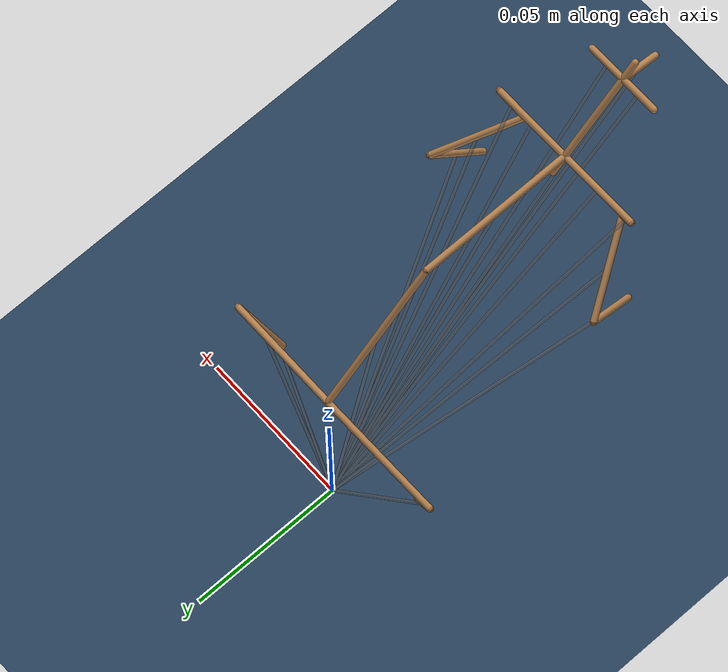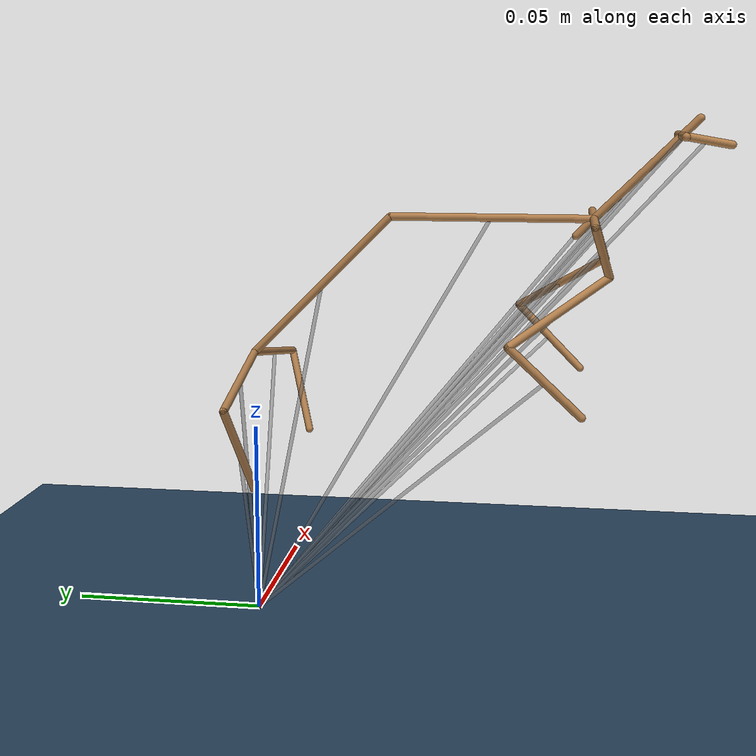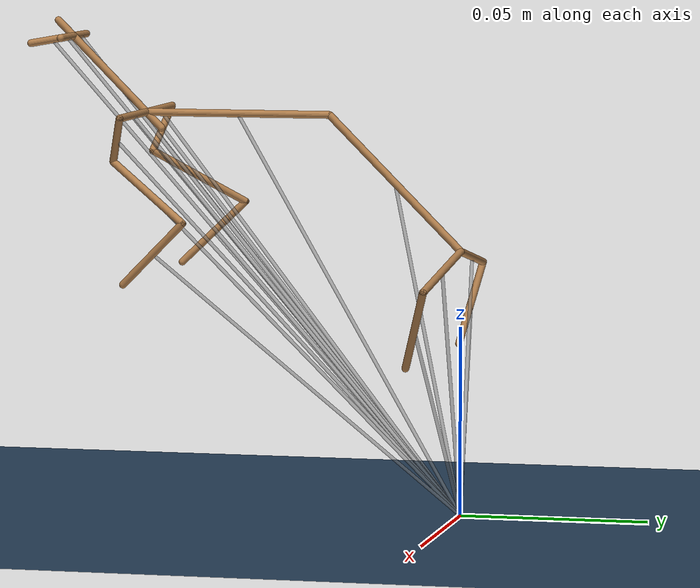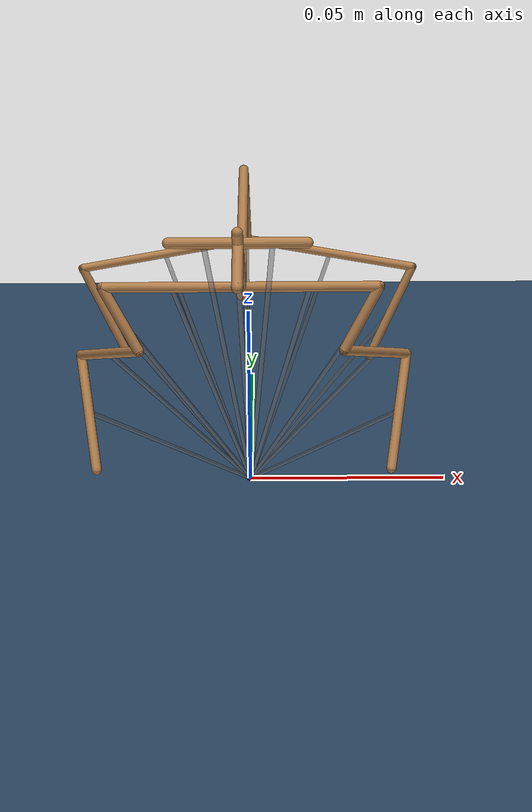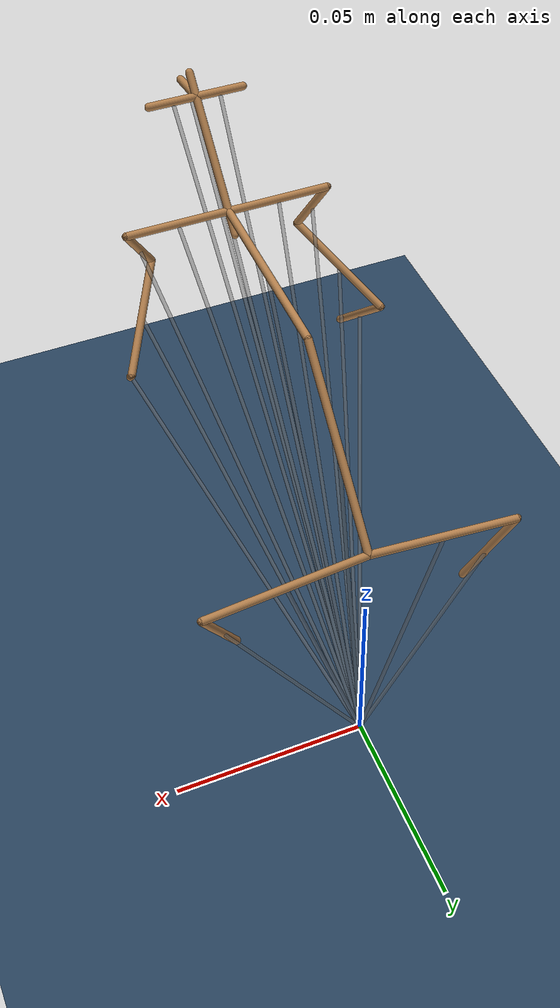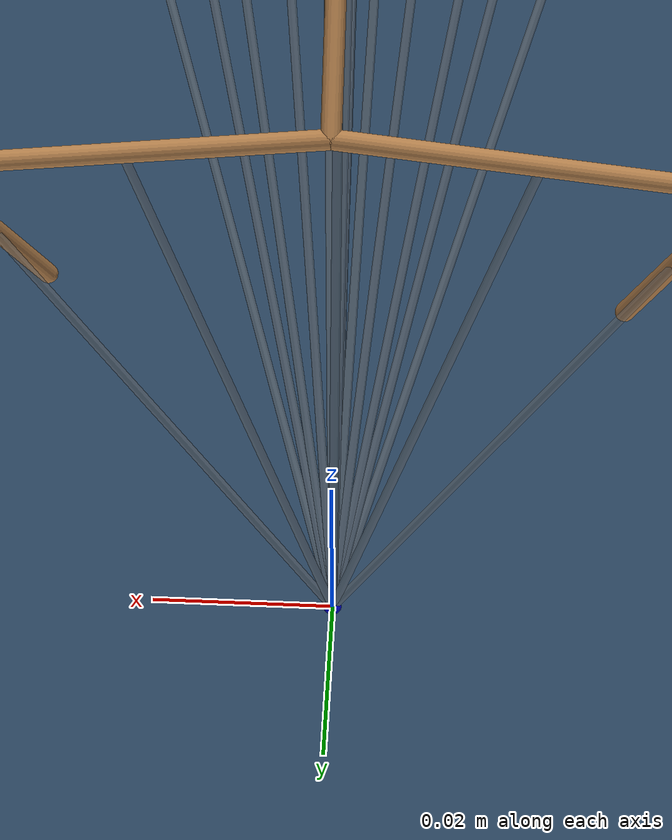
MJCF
<mujoco model="simple_rodent">
  <include file="./common/skybox.xml"/>
  <include file="./common/visual.xml"/>
  <include file="./common/materials.xml"/>

  <compiler angle="degree"/>
  <statistic extent="0.25" center="0 0 0" meanmass="1" meaninertia="1"/>

  <visual>
    <global offheight='1000' offwidth='1000'/>
  </visual>

  <option>
    <flag constraint="enable"/>
  </option>

  <default class="main">
    <joint type="hinge" limited="true" solimplimit="0 0.99 0.01" stiffness="0.1" armature=".1e-3" damping=".01" range="-180 180"/>
    <geom size="0.03 .01 0" conaffinity="1" condim="3" friction="0.7 0.005 0.0001" solref="0.015 1" solimp="0.99 0.99 0.003"/>
    <general ctrllimited="true" ctrlrange="-1 1"/>
    <default class="rodent">
      <geom type="capsule" material="self" group="2" size=".001 .001"/>
    </default>
    <default class="mocap">
      <tendon rgba="0.5 0.5 0.5 0.5" width="0.0005" limited="false" solimplimit="1 5 0.005 0.1 1" solreflimit="0.02 1" springlength="0.00001" stiffness="100" range="0 0.05" frictionloss="10000" damping="1"/>
    </default>
  </default>

  <tendon>
		<spatial name="HeadFT" class="mocap">
      <site site="HeadF"/> <site site="Skull1"/>
    </spatial>
    <spatial name="HeadLT" class="mocap">
      <site site="HeadL"/> <site site="Skull2"/>
    </spatial>
    <spatial name="HeadBT" class="mocap">
      <site site="HeadB"/> <site site="Skull3"/>
    </spatial>
    <spatial name="SpineFT" class="mocap">
      <site site="SpineF"/> <site site="FSpine"/>
    </spatial>
    <spatial name="SpineMT" class="mocap">
      <site site="SpineM"/> <site site="MSpine"/>
    </spatial>
    <spatial name="SpineLT" class="mocap">
      <site site="SpineL"/> <site site="SpineR"/>
    </spatial>
    <spatial name="HipLT" class="mocap">
      <site site="HipL"/> <site site="LFemur"/>
    </spatial>
    <spatial name="HipRT" class="mocap">
      <site site="HipR"/> <site site="RFemur"/>
    </spatial>
    <spatial name="ElbowLT" class="mocap">
      <site site="ElbowL"/> <site site="LHumerus"/>
    </spatial>
    <spatial name="ArmLT" class="mocap">
      <site site="ArmL"/> <site site="LArm"/>
    </spatial>
    <spatial name="ShoulderLT" class="mocap">
      <site site="ShoulderL"/> <site site="LScap"/>
    </spatial>
    <spatial name="ShoulderL2T" class="mocap">
      <site site="ShoulderL"/> <site site="LScap_2"/>
    </spatial>
    <spatial name="ShoulderRT" class="mocap">
      <site site="ShoulderR"/> <site site="RScap"/>
    </spatial>
    <spatial name="ShoulderR2T" class="mocap">
      <site site="ShoulderR"/> <site site="RScap_2"/>
    </spatial>
    <spatial name="ElbowRT" class="mocap">
      <site site="ElbowR"/> <site site="RHumerus"/>
    </spatial>
    <spatial name="ArmRT" class="mocap">
      <site site="ArmR"/> <site site="RArm"/>
    </spatial>
    <spatial name="KneeRT" class="mocap">
      <site site="KneeR"/> <site site="RFemur"/>
    </spatial>
    <spatial name="KneeLT" class="mocap">
      <site site="KneeL"/> <site site="LFemur"/>
    </spatial>
    <spatial name="ShinLT" class="mocap">
      <site site="ShinL"/> <site site="LShin"/>
    </spatial>
    <spatial name="ShinRT" class="mocap">
      <site site="ShinR"/> <site site="RShin"/>
    </spatial>
	</tendon>

  <worldbody>
    <light name="tracking_light" pos="0 0 7" dir="0 0 -1" mode="trackcom"/>
    <camera name="back" pos="0 3 1.4" xyaxes="-1 0 0 0 -1 2" mode="trackcom"/>
    <camera name="side" pos="-3 0 1.4" xyaxes="0 -1 0 1 0 2" mode="trackcom"/>
    <camera name="front_side" pos="-0.2 -0.25 0.15" xyaxes="0.5 -0.5 0 0.1 0.1 1"  mode="trackcom"/>
    <geom name="floor" type="plane" size="1 1 .1" material="grid"/>

    <body name="HeadF" mocap="true">
      <site name="HeadF" type="sphere" size="0.001" pos="0 0 0" rgba="0 0 1 0.8"/>
    </body>
    <body name="HeadB" mocap="true">
      <site name="HeadB" type="sphere" size="0.001" pos="0 0 0" rgba="0 0 1 0.8"/>
    </body>
    <body name="HeadL" mocap="true">
      <site name="HeadL" type="sphere" size="0.001" pos="0 0 0" rgba="0 0 1 0.8"/>
    </body>
    <body name="SpineF" mocap="true">
      <site name="SpineF" type="sphere" size="0.001" pos="0 0 0" rgba="1 0 0 0.8"/>
    </body>
    <body name="SpineM" mocap="true">
      <site name="SpineM" type="sphere" size="0.001" pos="0 0 0" rgba="1 0 0 0.8"/>
    </body>
    <body name="SpineL" mocap="true">
      <site name="SpineL" type="sphere" size="0.001" pos="0 0 0" rgba="1 0 0 0.8"/>
    </body>
    <body name="Offset1" mocap="true">
      <site name="Offset1" type="sphere" size="0.001" pos="0 0 0" rgba="0.75 0 0.5 0.8"/>
    </body>
    <body name="Offset2" mocap="true">
      <site name="Offset2" type="sphere" size="0.001" pos="0 0 0" rgba="0.75 0 0.5 0.8"/>
    </body>
    <body name="HipL" mocap="true">
      <site name="HipL" type="sphere" size="0.001" pos="0 0 0" rgba="0 0.75 0.75 0.8"/>
    </body>
    <body name="HipR" mocap="true">
      <site name="HipR" type="sphere" size="0.001" pos="0 0 0" rgba="0 1 0 0.8"/>
    </body>
    <body name="ElbowL" mocap="true">
      <site name="ElbowL" type="sphere" size="0.001" pos="0 0 0" rgba="1 0.75 0 0.8"/>
    </body>
    <body name="ArmL" mocap="true">
      <site name="ArmL" type="sphere" size="0.001" pos="0 0 0" rgba="1 0.75 0 0.8"/>
    </body>
    <body name="ShoulderL" mocap="true">
      <site name="ShoulderL" type="sphere" size="0.001" pos="0 0 0" rgba="1 0.75 0 0.8"/>
    </body>
    <body name="ShoulderR" mocap="true">
      <site name="ShoulderR" type="sphere" size="0.001" pos="0 0 0" rgba="1 1 1 0.8"/>
    </body>
    <body name="ElbowR" mocap="true">
      <site name="ElbowR" type="sphere" size="0.001" pos="0 0 0" rgba="1 1 1 0.8"/>
    </body>
    <body name="ArmR" mocap="true">
      <site name="ArmR" type="sphere" size="0.001" pos="0 0 0" rgba="1 1 1 0.8"/>
    </body>
    <body name="KneeR" mocap="true">
      <site name="KneeR" type="sphere" size="0.001" pos="0 0 0" rgba="0 1 0 0.8"/>
    </body>
    <body name="KneeL" mocap="true">
      <site name="KneeL" type="sphere" size="0.001" pos="0 0 0" rgba="0 0.75 0.75 0.8"/>
    </body>
    <body name="ShinL" mocap="true">
      <site name="ShinL" type="sphere" size="0.001" pos="0 0 0" rgba="0 0.75 0.75 0.8"/>
    </body>
    <body name="ShinR" mocap="true">
      <site name="ShinR" type="sphere" size="0.001" pos="0 0 0" rgba="0 1 0 0.8"/>
    </body>

    <body name="root" pos="0 0 70e-3" euler="135 90 0" childclass="rodent">
      <freejoint name="SpineR"/>
      <camera name="bodycam" pos="0 .3 .1" xyaxes="-1 0 0 0 1 0" fovy="80"/>
      <body name="SpineR">
        <body name="RFemur" pos="0 0 0" euler="-90 -30 10">
          <joint name="RFemur_rx" axis="1 0 0"/>
          <joint name="RFemur_ry" axis="0 1 0"/>
          <joint name="RFemur_rz" axis="0 0 1"/>
          <geom name="RFemur" size="1e-3 20e-3" pos="0 20e-3 0" euler="90 0 0"/>
          <site name="RFemur" size="1e-3 20e-3" pos="0 20e-3 0" euler="90 0 0"/>
          <body name="RShin" pos="0 40e-3 0" euler="10 0 -75">
            <joint name="RShin" axis="1 0 0"/>
            <geom name="RShin" pos="0 -12e-3 0" size=".001 12e-3" euler="90 0 0"/>
            <site name="RShin" pos="0 -12e-3 0" size=".001 12e-3" euler="90 0 0"/>
          </body>
        </body>
        <body name="LFemur" pos="0 0 0" euler="90 30 10">
          <joint name="LFemur_rx" axis="1 0 0"/>
          <joint name="LFemur_ry" axis="0 1 0"/>
          <joint name="LFemur_rz" axis="0 0 1"/>
          <geom name="LFemur" size="1e-3 20e-3" pos="0 20e-3 0" euler="90 0 0"/>
          <site name="LFemur" size="1e-3 20e-3" pos="0 20e-3 0" euler="90 0 0"/>
          <body name="LShin" pos="0 40e-3 0" euler="10 0 -75">
            <joint name="LShin"/>
            <geom name="LShin" pos="0 -12e-3 0" size=".001 12e-3" euler="90 0 0"/>
            <site name="LShin" pos="0 -12e-3 0" size=".001 12e-3" euler="90 0 0"/>
          </body>
        </body>
        <geom name="SpineR" size="1e-3 25e-3" pos="0 25e-3 0"  euler="90 0 0"/>
        <site name="SpineR" size="1e-3 25e-3" pos="0 25e-3 0"  euler="90 0 0"/>
        <body name="MSpine" pos="0 50e-3 0" euler="-180 0 135">
          <joint name="MSpine"/>
          <geom name="MSpine" size="1e-3 25e-3" pos="0 25e-3 0"  euler="90 0 0"/>
          <site name="MSpine" size="1e-3 25e-3" pos="0 25e-3 0"  euler="90 0 0"/>
          <body name="FSpine" pos="0 50e-3 0" euler="-90 -90 90">
            <joint name="FSpine_rx" axis="1 0 0"/>
            <joint name="FSpine_rz" axis="0 0 1"/>
            <geom name="FSpine" size="1e-3 20e-3" pos="0 -10e-3 10e-3"  euler="45 0 0"/>
            <site name="FSpine" size="1e-3 20e-3" pos="0 -10e-3 10e-3"  euler="45 0 0"/>
            <body name="Skull1" pos="0 -20e-3 20e-3" euler="10 0 0">
              <joint name="Skull1"/>
              <geom name="Skull1" size=".001 6e-3" pos="0 -6e-3 0" euler="90 0 0"/>
              <site name="Skull1" size=".001 6e-3" pos="0 -6e-3 0" euler="90 0 0"/>
            </body>
            <body name="Skull2" pos="0 -20e-3 20e-3" euler="180 0 90">
              <joint name="Skull2"/>
              <geom name="Skull2" size=".001 6e-3" pos="0 -6e-3 0" euler="90 0 0"/>
              <site name="Skull2" size=".001 6e-3" pos="0 -6e-3 0" euler="90 0 0"/>
            </body>
            <body name="Skull3" pos="0 -20e-3 20e-3" euler="0 0 -90">
              <joint name="Skull3"/>
              <geom name="Skull3" size=".001 6e-3" pos="0 -6e-3 0" euler="90 0 0"/>
              <site name="Skull3" size=".001 6e-3" pos="0 -6e-3 0" euler="90 0 0"/>
            </body>
          </body>
          <body name="LScap" pos="0 50e-3 0" euler="90 -30 -90">
            <joint name="LScap"/>
            <geom name="LScap" size=".001 13e-3" pos="13e-3 0 0" euler="90 90 0"/>
            <site name="LScap" size=".001 13e-3" pos="13e-3 0 0" euler="90 90 0"/>
            <body name="LScap_2" pos="26e-3 0 0" euler="20 -60 70">
              <joint name="LScap_2"/>
              <geom name="LScap_2" size=".001 7e-3" pos="0 7e-3 0" euler="90 0 0"/>
              <site name="LScap_2" size=".001 7e-3" pos="0 7e-3 0" euler="90 0 0"/>
              <body name="LHumerus" pos="0 14e-3 0" euler="0 20 -90">
                <joint name="LHumerus_rz" axis="0 0 1"/>
                <joint name="LHumerus_ry" axis="0 1 0"/>
                <joint name="LHumerus_rx" axis="1 0 0"/>
                <geom name="LHumerus" size=".001 15e-3" pos="0 15e-3 0" euler="90 0 0"/>
                <site name="LHumerus" size=".001 15e-3" pos="0 15e-3 0" euler="90 0 0"/>
                <body name="LArm" pos="0 30e-3 0" euler="0 -30 -75">
                  <joint name="LArm"/>
                  <geom name="LArm" pos="0 -12e-3 0" size=".001 12e-3" euler="90 0 0"/>
                  <site name="LArm" pos="0 -12e-3 0" size=".001 12e-3" euler="90 0 0"/>
                </body>
              </body>
            </body>
          </body>
          <body name="RScap" pos="0 50e-3 0" euler="-90 30 -90">
            <joint name="RScap"/>
            <geom name="RScap" size=".001 13e-3" pos="13e-3 0 0" euler="90 90 0"/>
            <site name="RScap" size=".001 13e-3" pos="13e-3 0 0" euler="90 90 0"/>
            <body name="RScap_2" pos="26e-3 0 0" euler="-20 60 70">
              <joint name="RScap_2"/>
              <geom name="RScap_2" size=".001 7e-3" pos="0 7e-3 0" euler="90 0 0"/>
              <site name="RScap_2" size=".001 7e-3" pos="0 7e-3 0" euler="90 0 0"/>
              <body name="RHumerus" pos="0 14e-3 0" euler="0 -20 -90">
                <joint name="RHumerus_rz" axis="0 0 1"/>
                <joint name="RHumerus_ry" axis="0 1 0"/>
                <joint name="RHumerus_rx" axis="1 0 0"/>
                <geom name="RHumerus" size=".001 15e-3" pos="0 15e-3 0" euler="90 0 0"/>
                <site name="RHumerus" size=".001 15e-3" pos="0 15e-3 0" euler="90 0 0"/>
                <body name="RArm" pos="0 30e-3 0" euler="0 30 -75">
                  <joint name="RArm"/>
                  <geom name="RArm" pos="0 -12e-3 0" size=".001 12e-3" euler="90 0 0"/>
                  <site name="RArm" pos="0 -12e-3 0" size=".001 12e-3" euler="90 0 0"/>
                </body>
              </body>
            </body>
          </body>
        </body>
      </body>
    </body>
  </worldbody>

  <actuator>
  </actuator>

  <sensor>
  </sensor>

</mujoco>

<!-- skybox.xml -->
<mujoco>
    <asset>
        <texture name="skybox" type="skybox" builtin="gradient" rgb1=".4 .6 .8" rgb2="0 0 0"
                 width="800" height="800" mark="random" markrgb="1 1 1"/>
    </asset>
  </mujoco>

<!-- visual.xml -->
<mujoco>
    <visual>
      <headlight ambient=".4 .4 .4" diffuse=".8 .8 .8" specular="0.1 0.1 0.1"/>
      <map znear=".01"/>
      <quality shadowsize="2048"/>
    </visual>
  </mujoco>

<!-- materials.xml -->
<!--
Common textures, colors and materials to be used throughout this suite. Some
materials such as xxx_highlight are activated on occurence of certain events,
for example receiving a positive reward.
-->
<mujoco>
    <asset>
      <texture name="grid" type="2d" builtin="checker" rgb1=".1 .2 .3" rgb2=".2 .3 .4" width="300" height="300" mark="edge" markrgb=".2 .3 .4"/>
      <material name="grid" texture="grid" texrepeat="1 1" texuniform="true" reflectance=".2"/>
      <material name="self" rgba=".7 .5 .3 1"/>
      <material name="self_default" rgba=".7 .5 .3 1"/>
      <material name="self_highlight" rgba="0 .5 .3 1"/>
      <material name="effector" rgba=".7 .4 .2 1"/>
      <material name="effector_default" rgba=".7 .4 .2 1"/>
      <material name="effector_highlight" rgba="0 .5 .3 1"/>
      <material name="decoration" rgba=".3 .5 .7 1"/>
      <material name="eye" rgba="0 .2 1 1"/>
      <material name="target" rgba=".6 .3 .3 1"/>
      <material name="target_default" rgba=".6 .3 .3 1"/>
      <material name="target_highlight" rgba=".6 .3 .3 .4"/>
      <material name="site" rgba=".5 .5 .5 .3"/>
    </asset>
  </mujoco>
